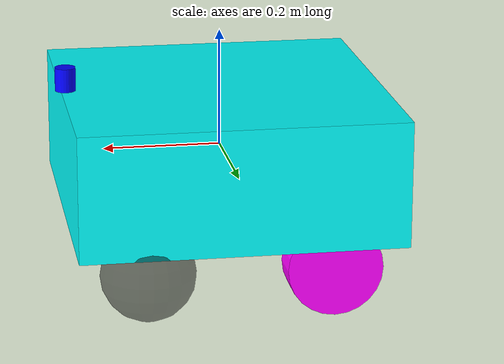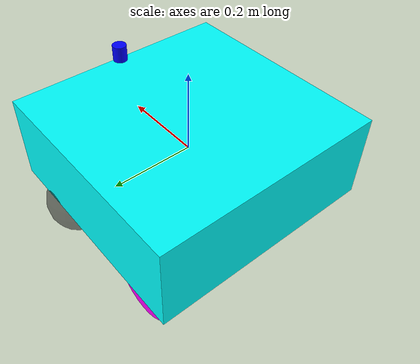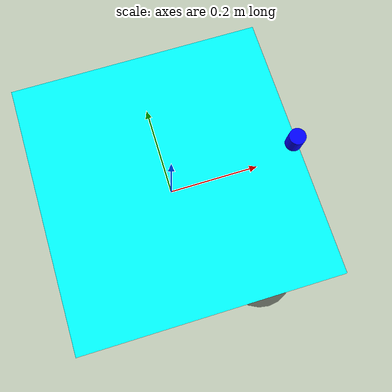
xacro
<?xml version="1.0"?>
<robot name="omnibot_v2" xmlns:xacro="http://ros.org/wiki/xacro">

    <!-- Define robot constants -->
    <xacro:property name="base_width" value="0.561"/>
    <xacro:property name="base_length" value="0.541"/>
    <xacro:property name="base_height" value="0.212"/>

    <xacro:property name="wheel_radius" value="0.07937"/>
    <xacro:property name="wheel_width" value="0.060"/>
    <xacro:property name="wheel_ygap" value="-0.0595"/>
    <xacro:property name="wheel_zoff" value="${(-base_height/2.0)-0.041}"/>
    <xacro:property name="wheel_xoff" value="-0.15297"/>

    <xacro:property name="caster_xoff" value="0.15297"/>

    <!-- Robot Base -->
    <link name="base_link">
        <visual>
        <geometry>
            <box size="${base_length} ${base_width} ${base_height}"/>
        </geometry>
        <material name="Cyan">
            <color rgba="0 1.0 1.0 1.0"/>
        </material>
        </visual>
    </link>

    <!-- Robot Footprint -->
    <link name="base_footprint"/>
    <joint name="base_joint" type="fixed">
        <parent link="base_link"/>
        <child link="base_footprint"/>
        <origin xyz="0.0 0.0 ${wheel_zoff-wheel_radius}" rpy="0 0 0"/>
    </joint>

    <!-- Laser -->
    <link name="laser_mount"/>
    <joint name="laser_mount_joint" type="fixed">
        <parent link="base_link"/>
        <child link="laser_mount"/>
        <origin xyz="${base_length/2-0.008} 0.0 ${base_height/2.0}" rpy="0 0 0"/>
    </joint>

    <link name="laser">
        <visual>
            <origin xyz="0 0 0" rpy="0 0 0"/>
            <geometry>
                <cylinder radius="${0.035/2.0}" length="0.04"/>
            </geometry>
            <material name="Blue">
                <color rgba="0.0 0.0 1.0 1.0"/>
            </material>
        </visual>
    </link>
     <joint name="laser_joint" type="fixed">
        <parent link="laser_mount"/>
        <child link="laser"/>
        <origin xyz="0 0 0.02" rpy="0 0 0"/>
    </joint>

    <!-- IMU -->
    <link name="imu"></link>
    <joint name="imu_joint" type="fixed">
        <parent link="base_link"/>
        <child link="imu"/>
        <origin xyz="0.2 -.1 ${-base_height/2+0.02}" rpy="0 0 0"/>
    </joint>

    <!-- Wheels -->
    <xacro:macro name="wheel" params="prefix x_reflect y_reflect">
        <link name="${prefix}_link">
            <visual>
                <origin xyz="0 0 0" rpy="${pi/2} 0 0"/>
                <geometry>
                    <cylinder radius="${wheel_radius}" length="${wheel_width}"/>
                </geometry>
                <material name="Magenta">
                    <color rgba="1.0 0.0 1.0 1.0"/>
                </material>
            </visual>
        </link>

        <joint name="${prefix}_joint" type="continuous">
            <parent link="base_link"/>
            <child link="${prefix}_link"/>
            <origin xyz="${x_reflect*wheel_xoff} ${y_reflect*(base_width/2+wheel_ygap)} ${wheel_zoff}" rpy="0 0 0"/>
            <axis xyz="0 1 0"/>
        </joint>
    </xacro:macro>

    <xacro:wheel prefix="drivewhl_l" x_reflect="1" y_reflect="1" />
    <xacro:wheel prefix="drivewhl_r" x_reflect="1" y_reflect="-1" />

    <!-- Caster Wheels -->
    <xacro:macro name="caster" params="prefix x_reflect y_reflect">
        <link name="${prefix}_link">
            <visual>
                <geometry>
                    <sphere radius="${wheel_radius}"/>
                </geometry>
                <material name="Black">
                    <color rgba="0 0 0 .5"/>
                </material>
            </visual>
        </link>

        <joint name="${prefix}_joint" type="fixed">
            <parent link="base_link"/>
            <child link="${prefix}_link"/>
            <origin xyz="${caster_xoff} ${y_reflect*(base_width/2+wheel_ygap)} ${wheel_zoff}" rpy="0 0 0"/>
        </joint>
    </xacro:macro>

    <xacro:caster prefix="caster_l" x_reflect="1" y_reflect="1" />
    <xacro:caster prefix="caster_r" x_reflect="1" y_reflect="-1" />

</robot>
